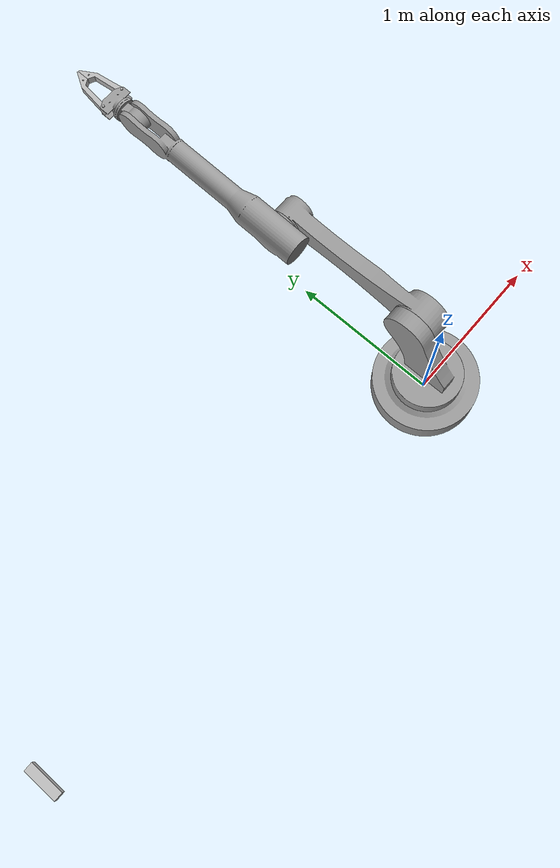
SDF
<sdf version='1.6'>
  <model name='robot'>
    <link name='base_link'>
      <pose frame=''>0 0 0 0 -0 0</pose>
      <inertial>
        <pose frame=''>0 0 0 0 -0 0</pose>
        <mass>1</mass>
        <inertia>
          <ixx>0.236017</ixx>
          <ixy>0</ixy>
          <ixz>0</ixz>
          <iyy>0.236017</iyy>
          <iyz>0</iyz>
          <izz>0.4624</izz>
        </inertia>
      </inertial>
      <collision name='base_link_collision'>
        <pose frame=''>0 0 0 0 -0 0</pose>
        <geometry>
          <mesh>
            <scale>1 1 1</scale>
            <uri>file:///home/adil/sim_ws/src/six_dof/meshes/base.stl</uri>
          </mesh>
        </geometry>
        <surface>
          <contact>
            <ode/>
          </contact>
          <friction>
            <ode>
              <mu>5</mu>
              <mu2>5</mu2>
            </ode>
          </friction>
        </surface>
      </collision>
      <collision name='base_link_fixed_joint_lump__kinect_link_collision_1'>
        <pose frame=''>-3 0 1.2 0 -0 0</pose>
        <geometry>
          <box>
            <size>0.05 0.2 0.05</size>
          </box>
        </geometry>
        <surface>
          <contact>
            <ode/>
          </contact>
          <friction>
            <ode/>
          </friction>
        </surface>
      </collision>
      <visual name='base_link_visual'>
        <pose frame=''>0 0 0 0 -0 0</pose>
        <geometry>
          <mesh>
            <scale>1 1 1</scale>
            <uri>file:///home/adil/sim_ws/src/six_dof/meshes/base.stl</uri>
          </mesh>
        </geometry>
        <material>
          <script>
            <name>Gazebo/Grey</name>
            <uri>file://media/materials/scripts/gazebo.material</uri>
          </script>
        </material>
      </visual>
      <visual name='base_link_fixed_joint_lump__kinect_link_visual_1'>
        <pose frame=''>-3 0 1.2 0 -0 0</pose>
        <geometry>
          <box>
            <size>0.05 0.2 0.05</size>
          </box>
        </geometry>
        <material>
          <script>
            <uri>__default__</uri>
            <name>__default__</name>
          </script>
        </material>
      </visual>
      <velocity_decay/>
      <gravity>1</gravity>
      <velocity_decay/>
      <sensor name='camera_1' type='depth'>
        <always_on>1</always_on>
        <visualize>1</visualize>
        <update_rate>15</update_rate>
        <camera name='__default__'>
          <horizontal_fov>1.0472</horizontal_fov>
          <image>
            <format>B8G8R8</format>
            <width>640</width>
            <height>480</height>
          </image>
          <depth_camera>
            <output>depths</output>
          </depth_camera>
          <clip>
            <near>0.05</near>
            <far>50</far>
          </clip>
        </camera>
        <plugin name='camera_controller' filename='libgazebo_ros_openni_kinect.so'>
          <baseline>0.1</baseline>
          <alwaysOn>1</alwaysOn>
          <updateRate>10.0</updateRate>
          <cameraName>kinect</cameraName>
          <frameName>camera_link_optical</frameName>
          <imageTopicName>rgb/image_raw</imageTopicName>
          <depthImageTopicName>depth/image_raw</depthImageTopicName>
          <pointCloudTopicName>depth/points</pointCloudTopicName>
          <cameraInfoTopicName>rgb/camera_info</cameraInfoTopicName>
          <depthImageCameraInfoTopicName>depth/camera_info</depthImageCameraInfoTopicName>
          <pointCloudCutoff>0.4</pointCloudCutoff>
          <hackBaseline>0.07</hackBaseline>
          <distortionK1>0.0</distortionK1>
          <distortionK2>0.0</distortionK2>
          <distortionK3>0.0</distortionK3>
          <distortionT1>0.0</distortionT1>
          <distortionT2>0.0</distortionT2>
          <CxPrime>0.0</CxPrime>
          <Cx>0.0</Cx>
          <Cy>0.0</Cy>
          <focalLength>0.0</focalLength>
        </plugin>
        <pose frame=''>-3 0 1.2 0 -0 0</pose>
      </sensor>
    </link>
    <joint name='fixed' type='fixed'>
      <child>base_link</child>
      <parent>world</parent>
    </joint>
    <link name='link1'>
      <pose frame=''>0 0 0.17 0 -0 0</pose>
      <inertial>
        <pose frame=''>0 0.05445 0.205749 0 -0 0</pose>
        <mass>3</mass>
        <inertia>
          <ixx>0.135625</ixx>
          <ixy>-0</ixy>
          <ixz>-0</ixz>
          <iyy>0.135625</iyy>
          <iyz>-0</iyz>
          <izz>0.06</izz>
        </inertia>
      </inertial>
      <collision name='link1_collision'>
        <pose frame=''>0 0 0 0 -0 0</pose>
        <geometry>
          <mesh>
            <scale>1 1 1</scale>
            <uri>file:///home/adil/sim_ws/src/six_dof/meshes/link1.stl</uri>
          </mesh>
        </geometry>
        <surface>
          <contact>
            <ode/>
          </contact>
          <friction>
            <ode>
              <mu>5</mu>
              <mu2>5</mu2>
            </ode>
          </friction>
        </surface>
      </collision>
      <visual name='link1_visual'>
        <pose frame=''>0 0 0 0 -0 0</pose>
        <geometry>
          <mesh>
            <scale>1 1 1</scale>
            <uri>file:///home/adil/sim_ws/src/six_dof/meshes/link1.stl</uri>
          </mesh>
        </geometry>
        <material>
          <script>
            <name>Gazebo/Grey</name>
            <uri>file://media/materials/scripts/gazebo.material</uri>
          </script>
        </material>
      </visual>
      <gravity>1</gravity>
      <velocity_decay/>
    </link>
    <joint name='base_link1_joint' type='revolute'>
      <child>link1</child>
      <parent>base_link</parent>
      <axis>
        <xyz>0 0 1</xyz>
        <limit>
          <lower>-3</lower>
          <upper>3</upper>
          <effort>200</effort>
          <velocity>3</velocity>
        </limit>
        <dynamics>
          <spring_reference>0</spring_reference>
          <spring_stiffness>0</spring_stiffness>
        </dynamics>
        <use_parent_model_frame>1</use_parent_model_frame>
      </axis>
    </joint>
    <link name='link2'>
      <pose frame=''>0.05 0.2 0.67 3.14159 1.57079 3.14159</pose>
      <inertial>
        <pose frame=''>-0.001991 0.465745 0.069578 0 -0 0</pose>
        <mass>4.5</mass>
        <inertia>
          <ixx>0.521484</ixx>
          <ixy>0</ixy>
          <ixz>-0</ixz>
          <iyy>0.0271875</iyy>
          <iyz>0</iyz>
          <izz>0.521484</izz>
        </inertia>
      </inertial>
      <collision name='link2_collision'>
        <pose frame=''>0 0 0 0 -0 0</pose>
        <geometry>
          <mesh>
            <scale>1 1 1</scale>
            <uri>file:///home/adil/sim_ws/src/six_dof/meshes/link2.stl</uri>
          </mesh>
        </geometry>
        <surface>
          <contact>
            <ode/>
          </contact>
          <friction>
            <ode>
              <mu>5</mu>
              <mu2>5</mu2>
            </ode>
          </friction>
        </surface>
      </collision>
      <visual name='link2_visual'>
        <pose frame=''>0 0 0 0 -0 0</pose>
        <geometry>
          <mesh>
            <scale>1 1 1</scale>
            <uri>file:///home/adil/sim_ws/src/six_dof/meshes/link2.stl</uri>
          </mesh>
        </geometry>
        <material>
          <script>
            <name>Gazebo/Grey</name>
            <uri>file://media/materials/scripts/gazebo.material</uri>
          </script>
        </material>
      </visual>
      <gravity>1</gravity>
      <velocity_decay/>
    </link>
    <joint name='link1_link2_joint' type='revolute'>
      <child>link2</child>
      <parent>link1</parent>
      <axis>
        <xyz>1 0 -4e-06</xyz>
        <limit>
          <lower>-3</lower>
          <upper>3</upper>
          <effort>200</effort>
          <velocity>3</velocity>
        </limit>
        <dynamics>
          <spring_reference>0</spring_reference>
          <spring_stiffness>0</spring_stiffness>
        </dynamics>
        <use_parent_model_frame>1</use_parent_model_frame>
      </axis>
    </joint>
    <link name='link3'>
      <pose frame=''>0.05 1.2 0.67 3.14159 1.57079 3.14159</pose>
      <inertial>
        <pose frame=''>-0.102694 0.46387 -0.115298 0 -0 0.095993</pose>
        <mass>8</mass>
        <inertia>
          <ixx>1.22373</ixx>
          <ixy>0</ixy>
          <ixz>-0</ixz>
          <iyy>0.0533333</iyy>
          <iyz>0</iyz>
          <izz>1.22373</izz>
        </inertia>
      </inertial>
      <collision name='link3_collision'>
        <pose frame=''>0 0 0 0 -0 0</pose>
        <geometry>
          <mesh>
            <scale>1 1 1</scale>
            <uri>file:///home/adil/sim_ws/src/six_dof/meshes/link3.stl</uri>
          </mesh>
        </geometry>
        <surface>
          <contact>
            <ode/>
          </contact>
          <friction>
            <ode>
              <mu>5</mu>
              <mu2>5</mu2>
            </ode>
          </friction>
        </surface>
      </collision>
      <visual name='link3_visual'>
        <pose frame=''>0 0 0 0 -0 0</pose>
        <geometry>
          <mesh>
            <scale>1 1 1</scale>
            <uri>file:///home/adil/sim_ws/src/six_dof/meshes/link3.stl</uri>
          </mesh>
        </geometry>
        <material>
          <script>
            <name>Gazebo/Grey</name>
            <uri>file://media/materials/scripts/gazebo.material</uri>
          </script>
        </material>
      </visual>
      <gravity>1</gravity>
      <velocity_decay/>
    </link>
    <joint name='link2_link3_joint' type='revolute'>
      <child>link3</child>
      <parent>link2</parent>
      <axis>
        <xyz>1 0 -4e-06</xyz>
        <limit>
          <lower>-3</lower>
          <upper>3</upper>
          <effort>500</effort>
          <velocity>3</velocity>
        </limit>
        <dynamics>
          <spring_reference>0</spring_reference>
          <spring_stiffness>0</spring_stiffness>
        </dynamics>
        <use_parent_model_frame>1</use_parent_model_frame>
      </axis>
    </joint>
    <link name='link4'>
      <pose frame=''>-0.069999 2.283 0.823 3.14159 1.57079 3.14159</pose>
      <inertial>
        <pose frame=''>0 0.074249 -0.033 0 -0 0</pose>
        <mass>1</mass>
        <inertia>
          <ixx>0.00249633</ixx>
          <ixy>0</ixy>
          <ixz>-0</ixz>
          <iyy>0.00249633</iyy>
          <iyz>-0</iyz>
          <izz>0.00343542</izz>
        </inertia>
      </inertial>
      <collision name='link4_collision'>
        <pose frame=''>0 0 0 0 -0 0</pose>
        <geometry>
          <mesh>
            <scale>1 1 1</scale>
            <uri>file:///home/adil/sim_ws/src/six_dof/meshes/link4_n.stl</uri>
          </mesh>
        </geometry>
        <surface>
          <contact>
            <ode/>
          </contact>
          <friction>
            <ode>
              <mu>5</mu>
              <mu2>5</mu2>
            </ode>
          </friction>
        </surface>
      </collision>
      <visual name='link4_visual'>
        <pose frame=''>0 0 0 0 -0 0</pose>
        <geometry>
          <mesh>
            <scale>1 1 1</scale>
            <uri>file:///home/adil/sim_ws/src/six_dof/meshes/link4_n.stl</uri>
          </mesh>
        </geometry>
        <material>
          <script>
            <name>Gazebo/Grey</name>
            <uri>file://media/materials/scripts/gazebo.material</uri>
          </script>
        </material>
      </visual>
      <gravity>1</gravity>
      <velocity_decay/>
    </link>
    <joint name='link3_link4_joint' type='revolute'>
      <child>link4</child>
      <parent>link3</parent>
      <axis>
        <xyz>1 0 -4e-06</xyz>
        <limit>
          <lower>-3</lower>
          <upper>3</upper>
          <effort>200</effort>
          <velocity>3</velocity>
        </limit>
        <dynamics>
          <spring_reference>0</spring_reference>
          <spring_stiffness>0</spring_stiffness>
        </dynamics>
        <use_parent_model_frame>1</use_parent_model_frame>
      </axis>
    </joint>
    <link name='link5'>
      <pose frame=''>-0.069999 2.413 0.823 1.57079 -7e-06 -3.14159</pose>
      <inertial>
        <pose frame=''>0 0.074249 -0.033 0 -0 0</pose>
        <mass>1</mass>
        <inertia>
          <ixx>0.00249633</ixx>
          <ixy>0</ixy>
          <ixz>-0</ixz>
          <iyy>0.00249633</iyy>
          <iyz>-0</iyz>
          <izz>0.00343542</izz>
        </inertia>
      </inertial>
      <collision name='link5_collision'>
        <pose frame=''>0 0 0 0 -0 0</pose>
        <geometry>
          <mesh>
            <scale>1 1 1</scale>
            <uri>file:///home/adil/sim_ws/src/six_dof/meshes/link5.stl</uri>
          </mesh>
        </geometry>
        <surface>
          <contact>
            <ode/>
          </contact>
          <friction>
            <ode>
              <mu>5</mu>
              <mu2>5</mu2>
            </ode>
          </friction>
        </surface>
      </collision>
      <visual name='link5_visual'>
        <pose frame=''>0 0 0 0 -0 0</pose>
        <geometry>
          <mesh>
            <scale>1 1 1</scale>
            <uri>file:///home/adil/sim_ws/src/six_dof/meshes/link5.stl</uri>
          </mesh>
        </geometry>
        <material>
          <script>
            <name>Gazebo/Grey</name>
            <uri>file://media/materials/scripts/gazebo.material</uri>
          </script>
        </material>
      </visual>
      <gravity>1</gravity>
      <velocity_decay/>
    </link>
    <joint name='link4_link5_joint' type='revolute'>
      <child>link5</child>
      <parent>link4</parent>
      <axis>
        <xyz>0 1 4e-06</xyz>
        <limit>
          <lower>-3</lower>
          <upper>3</upper>
          <effort>200</effort>
          <velocity>3</velocity>
        </limit>
        <dynamics>
          <spring_reference>0</spring_reference>
          <spring_stiffness>0</spring_stiffness>
        </dynamics>
        <use_parent_model_frame>1</use_parent_model_frame>
      </axis>
    </joint>
    <link name='finger1'>
      <pose frame=''>-0.149999 2.488 0.823001 3.14159 -7e-06 -3.14159</pose>
      <inertial>
        <pose frame=''>0 0.074249 -0.033 0 -0 0</pose>
        <mass>1</mass>
        <inertia>
          <ixx>0.00249633</ixx>
          <ixy>0</ixy>
          <ixz>-0</ixz>
          <iyy>0.00249633</iyy>
          <iyz>-0</iyz>
          <izz>0.00343542</izz>
        </inertia>
      </inertial>
      <collision name='finger1_collision'>
        <pose frame=''>0 0 0 0 -0 0</pose>
        <geometry>
          <mesh>
            <scale>1 1 1</scale>
            <uri>file:///home/adil/sim_ws/src/six_dof/meshes/fin1.stl</uri>
          </mesh>
        </geometry>
        <surface>
          <contact>
            <ode>
              <kp>1e+06</kp>
              <kd>1</kd>
              <min_depth>0.001</min_depth>
            </ode>
          </contact>
          <friction>
            <ode>
              <mu>1000</mu>
              <mu2>1000</mu2>
            </ode>
          </friction>
        </surface>
      </collision>
      <visual name='finger1_visual'>
        <pose frame=''>0 0 0 0 -0 0</pose>
        <geometry>
          <mesh>
            <scale>1 1 1</scale>
            <uri>file:///home/adil/sim_ws/src/six_dof/meshes/fin1.stl</uri>
          </mesh>
        </geometry>
        <material>
          <script>
            <uri>__default__</uri>
            <name>__default__</name>
          </script>
        </material>
      </visual>
      <gravity>1</gravity>
      <velocity_decay/>
    </link>
    <joint name='l_finger_joint' type='prismatic'>
      <child>finger1</child>
      <parent>link5</parent>
      <axis>
        <xyz>-1 -0 7e-06</xyz>
        <limit>
          <lower>0</lower>
          <upper>0.1</upper>
          <effort>60</effort>
          <velocity>0.05</velocity>
        </limit>
        <dynamics>
          <damping>100</damping>
          <friction>0</friction>
          <spring_reference>0</spring_reference>
          <spring_stiffness>0</spring_stiffness>
        </dynamics>
        <use_parent_model_frame>1</use_parent_model_frame>
      </axis>
    </joint>
    <link name='finger2'>
      <pose frame=''>0.010001 2.488 0.823 3.14159 -7e-06 -3.14159</pose>
      <inertial>
        <pose frame=''>0 0.074249 -0.033 0 -0 0</pose>
        <mass>1</mass>
        <inertia>
          <ixx>0.00249633</ixx>
          <ixy>0</ixy>
          <ixz>-0</ixz>
          <iyy>0.00249633</iyy>
          <iyz>-0</iyz>
          <izz>0.00343542</izz>
        </inertia>
      </inertial>
      <collision name='finger2_collision'>
        <pose frame=''>0 0 0 0 -0 0</pose>
        <geometry>
          <mesh>
            <scale>1 1 1</scale>
            <uri>file:///home/adil/sim_ws/src/six_dof/meshes/fin2.stl</uri>
          </mesh>
        </geometry>
        <surface>
          <contact>
            <ode>
              <kp>1e+06</kp>
              <kd>1</kd>
              <min_depth>0.001</min_depth>
            </ode>
          </contact>
          <friction>
            <ode>
              <mu>1000</mu>
              <mu2>1000</mu2>
            </ode>
          </friction>
        </surface>
      </collision>
      <visual name='finger2_visual'>
        <pose frame=''>0 0 0 0 -0 0</pose>
        <geometry>
          <mesh>
            <scale>1 1 1</scale>
            <uri>file:///home/adil/sim_ws/src/six_dof/meshes/fin2.stl</uri>
          </mesh>
        </geometry>
        <material>
          <script>
            <uri>__default__</uri>
            <name>__default__</name>
          </script>
        </material>
      </visual>
      <gravity>1</gravity>
      <velocity_decay/>
    </link>
    <joint name='r_finger_joint' type='prismatic'>
      <child>finger2</child>
      <parent>link5</parent>
      <axis>
        <xyz>1 0 -7e-06</xyz>
        <limit>
          <lower>0</lower>
          <upper>0.1</upper>
          <effort>60</effort>
          <velocity>0.05</velocity>
        </limit>
        <dynamics>
          <damping>100</damping>
          <friction>0</friction>
          <spring_reference>0</spring_reference>
          <spring_stiffness>0</spring_stiffness>
        </dynamics>
        <use_parent_model_frame>1</use_parent_model_frame>
      </axis>
    </joint>
    <plugin name='gazebo_grasp_fix' filename='libgazebo_grasp_fix.so'>
      <arm>
        <arm_name>robot</arm_name>
        <palm_link>link5</palm_link>
        <gripper_link>finger1</gripper_link>
        <gripper_link>finger2</gripper_link>
      </arm>
      <forces_angle_tolerance>50</forces_angle_tolerance>
      <update_rate>4</update_rate>
      <grip_count_threshold>4</grip_count_threshold>
      <max_grip_count>8</max_grip_count>
      <release_tolerance>0.002</release_tolerance>
      <disable_collisions_on_attach>1</disable_collisions_on_attach>
      <contact_topic>__default_topic__</contact_topic>
    </plugin>
    <static>0</static>
    <plugin name='gazebo_ros_control' filename='libgazebo_ros_control.so'>
      <robotNamespace>/robot</robotNamespace>
      <robotSimType>gazebo_ros_control/DefaultRobotHWSim</robotSimType>
      <legacyModeNS>1</legacyModeNS>
    </plugin>
  </model>
</sdf>
